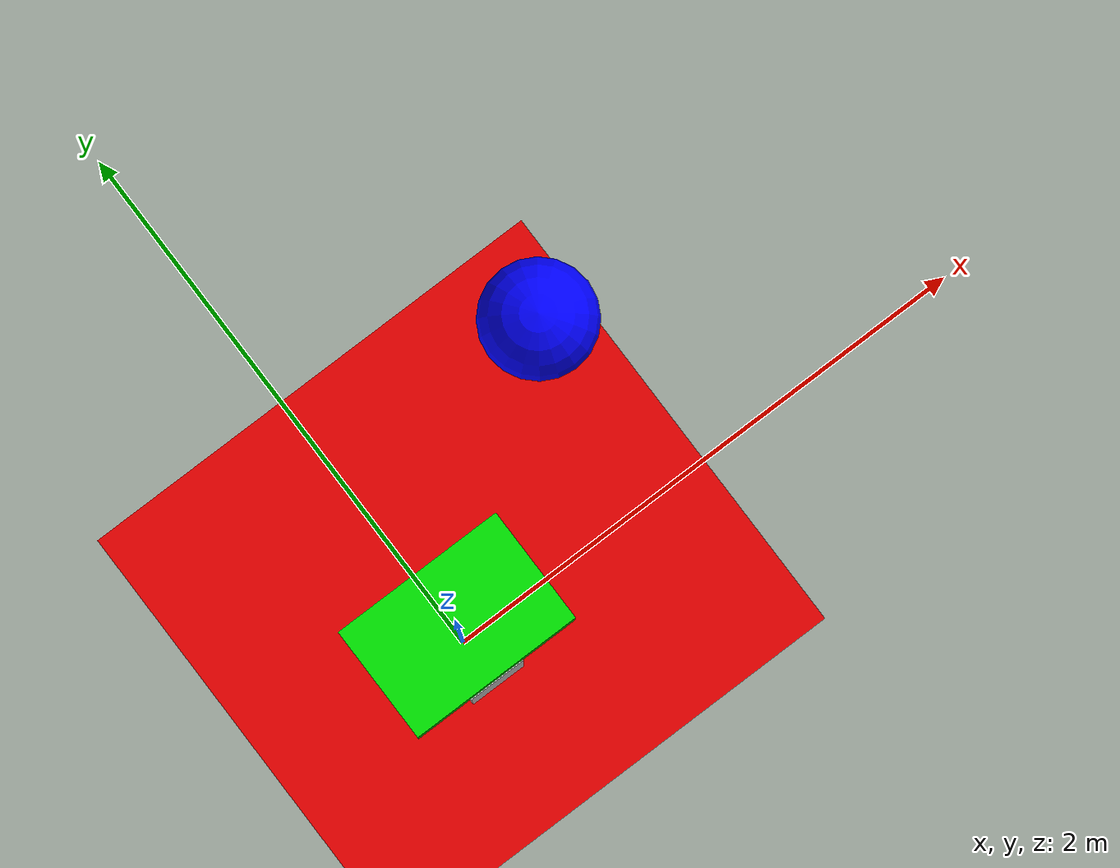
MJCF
<mujoco>

	<option gravity="0 0 -9.81"/>
	<!-- To make it more brighter -->
	<visual>
		<headlight ambient="0.5 0.5 0.5"/>
	</visual>

	<!-- Asset is like xacro in urdf -->
	<asset>
		<material name="white" rgba="1 1 1 1"/>
	</asset>
	<worldbody>
        <light diffuse=".5 .5 .5" pos="0 0 3" dir="0 0 -1"/>
		<geom type="plane" size="1 1 0.1" rgba=".9 0 0 1"/>

		<body pos="0 0 1" euler="0 0 0">
			<joint type="free"/>
			<inertial pos="0 0 0" mass="1" diaginertia=".001 .001 .001"/>
			<geom type="box" size=".1 .2 .3" material="white"/>
		</body>

		<body pos="0 0 1.5" euler="0 90 0">
			<joint type="free"/>
			<geom type="box" size=".1 .2 .3" rgba="0 .9 0 1"/>
		</body>

		<body pos="0.3 0 10">
			<joint type="free"/>
			<inertial pos="0 0 0" mass="10" diaginertia="0.1 0.1 0.1"/>
			<geom type="sphere" size="0.1" rgba="0 0 1 1"/>
		</body>
	</worldbody>
</mujoco>
<!--
1. When we run this file the boxes fall, because there is gravity. If we make the gravity zero then the boxes will not fall.
-->
